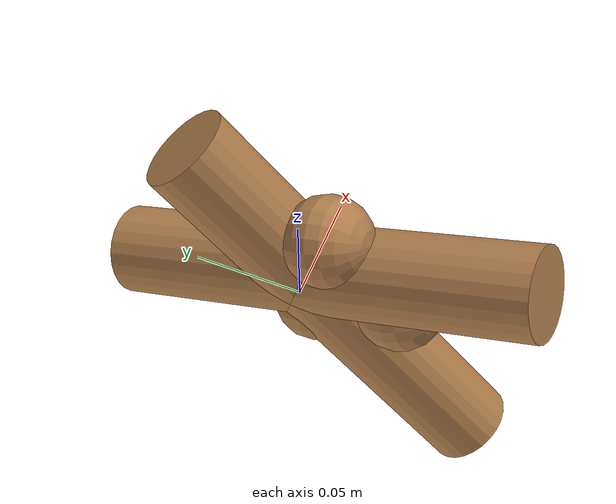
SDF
<?xml version='1.0'?>
<sdf version='1.5'>

  <model name ="shapetoExplore3">
   <static>false</static>
   <pose>0.0 0.0 0.0 1.2 0 0</pose>

   <link name ='sphere1'>
    <pose>0 0.0 0.01 0 0 0</pose>
    <collision name ='collision'>
     <geometry><sphere><radius>0.02</radius></sphere></geometry>
   </collision>

     <inertial>
      <mass>0.1</mass>
      <inertia>
        <ixx>0.0001</ixx>
        <ixy>0</ixy>
        <ixz>0</ixz>
        <iyy>0.0001</iyy>
        <iyz>0</iyz>
        <izz>0.0001</izz>
      </inertia>
    </inertial>

   <visual name ='visual'>
     <geometry><sphere><radius>0.02</radius></sphere></geometry>
     <material>
      <script>
       <uri>file://media/materials/scripts/gazebo.material</uri>
       <name>Gazebo/Wood</name>
     </script>
   </material>
 </visual>
</link>

<link name ='sphere2'>
  <pose>0 0.0 0.05 0 0 0</pose>
  <collision name ='collision'>
   <geometry><sphere><radius>0.02</radius></sphere></geometry>
 </collision>

     <inertial>
      <mass>0.1</mass>
      <inertia>
        <ixx>0.0001</ixx>
        <ixy>0</ixy>
        <ixz>0</ixz>
        <iyy>0.0001</iyy>
        <iyz>0</iyz>
        <izz>0.0001</izz>
      </inertia>
    </inertial>

 <visual name ='visual'>
   <geometry><sphere><radius>0.02</radius></sphere></geometry>
   <material>
    <script>
     <uri>file://media/materials/scripts/gazebo.material</uri>
     <name>Gazebo/Wood</name>
   </script>
 </material>
</visual>
</link>

<link name ='cyl1'>
  <pose>0 0.02 0.02 0 0 0</pose>
  <collision name ='collision'>
   <geometry><cylinder><radius>0.02</radius><length>0.2</length></cylinder></geometry>
 </collision>

     <inertial>
      <mass>0.1</mass>
      <inertia>
        <ixx>0.0001</ixx>
        <ixy>0</ixy>
        <ixz>0</ixz>
        <iyy>0.0001</iyy>
        <iyz>0</iyz>
        <izz>0.0001</izz>
      </inertia>
    </inertial>

 <visual name ='visual'>
   <geometry><cylinder><radius>0.02</radius><length>0.2</length></cylinder></geometry>
   <material>
    <script>
     <uri>file://media/materials/scripts/gazebo.material</uri>
     <name>Gazebo/Wood</name>
   </script>
 </material>
</visual>
</link>

<link name ='sphere3'>
  <pose>0 0.04 0.03 0 0 0</pose>
  <collision name ='collision'>
   <geometry><sphere><radius>0.02</radius></sphere></geometry>
 </collision>

      <inertial>
      <mass>0.1</mass>
      <inertia>
        <ixx>0.0001</ixx>
        <ixy>0</ixy>
        <ixz>0</ixz>
        <iyy>0.0001</iyy>
        <iyz>0</iyz>
        <izz>0.0001</izz>
      </inertia>
    </inertial>

 <visual name ='visual'>
   <geometry><sphere><radius>0.02</radius></sphere></geometry>
   <material>
    <script>
     <uri>file://media/materials/scripts/gazebo.material</uri>
     <name>Gazebo/Wood</name>
   </script>
 </material>
</visual>
</link>

<link name ='cyl2'>
  <pose>0 0.0 0.02 1.2 0 0</pose>
  <collision name ='collision'>
   <geometry><cylinder><radius>0.02</radius><length>0.2</length></cylinder></geometry>
 </collision>

     <inertial>
      <mass>0.1</mass>
      <inertia>
        <ixx>0.0001</ixx>
        <ixy>0</ixy>
        <ixz>0</ixz>
        <iyy>0.0001</iyy>
        <iyz>0</iyz>
        <izz>0.0001</izz>
      </inertia>
    </inertial>

 <visual name ='visual'>
   <geometry><cylinder><radius>0.02</radius><length>0.2</length></cylinder></geometry>
   <material>
    <script>
     <uri>file://media/materials/scripts/gazebo.material</uri>
     <name>Gazebo/Wood</name>
   </script>
 </material>
</visual>
</link>

<joint name="joint1" type="fixed">
  <parent>sphere1</parent>
  <child>sphere2</child>
</joint>
<joint name="joint2" type="fixed">
  <parent>sphere1</parent>
  <child>sphere3</child>
</joint>
<joint name="joint3" type="fixed">
  <parent>sphere1</parent>
  <child>cyl1</child>
</joint>
<joint name="joint4" type="fixed">
  <parent>sphere1</parent>
  <child>cyl2</child>
</joint>

</model>
</sdf>
